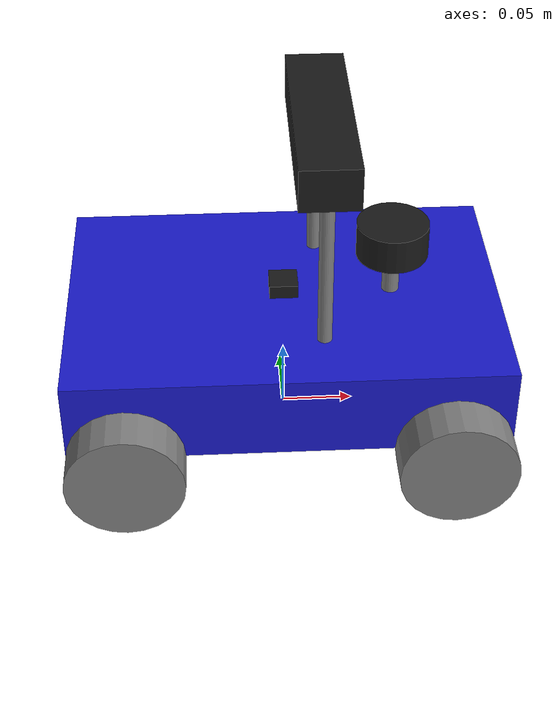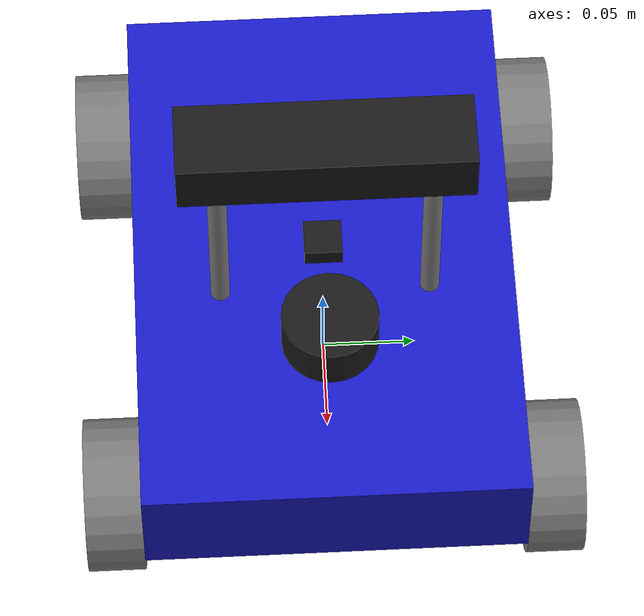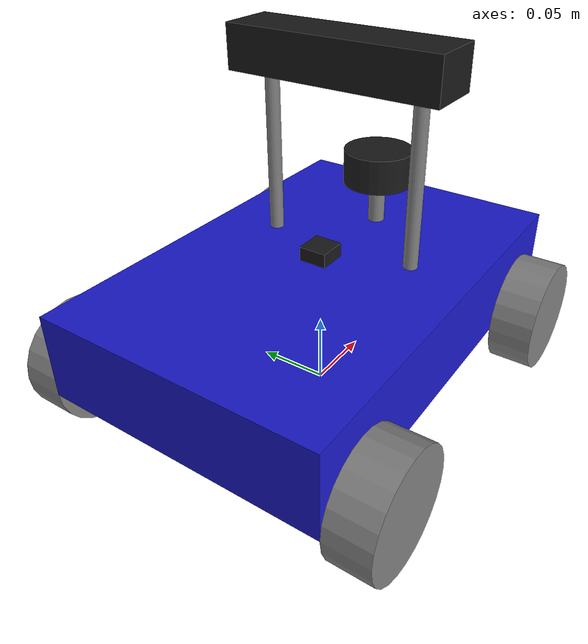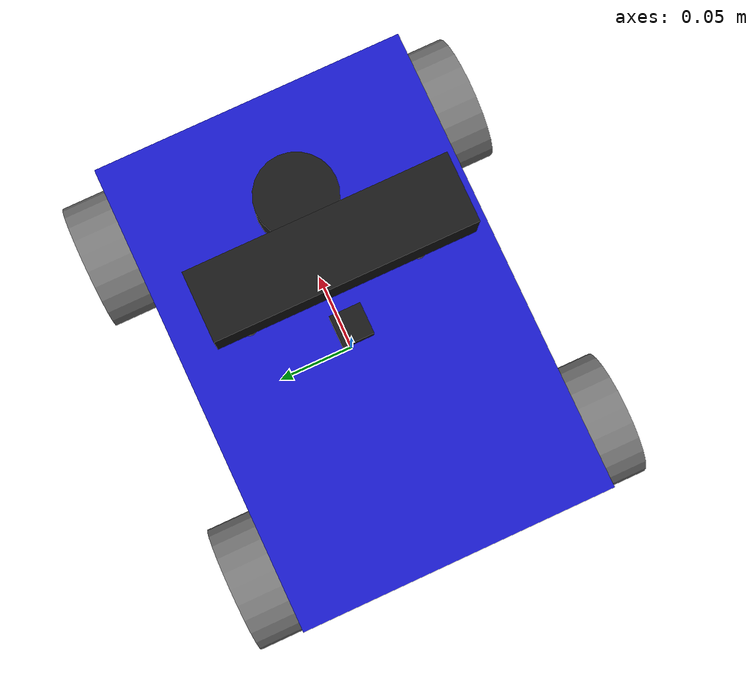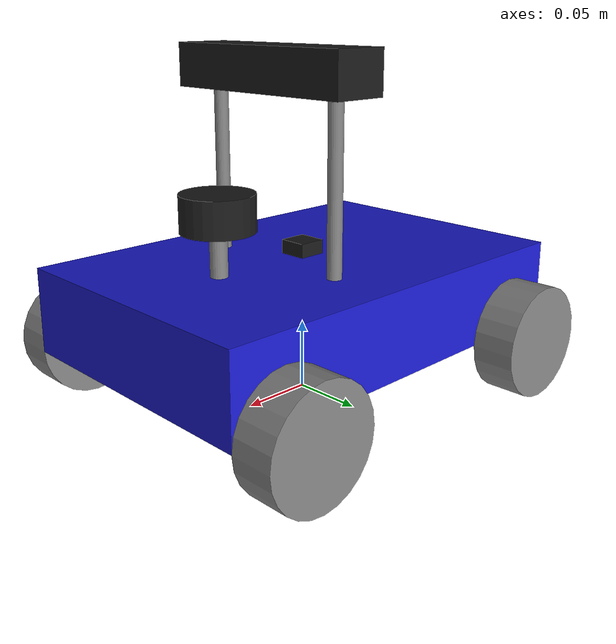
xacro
<?xml version="1.0"?>
<robot name="roscar" xmlns:xacro="http://www.ros.org/wiki/xacro">

    <!-- 仿真专用入口：复用 description 的机器人模型，再叠加 Gazebo 控制插件。 -->
    <xacro:include filename="$(find roscar_description)/urdf/roscar.urdf.xacro"/>

    <!-- Gazebo ros2_control 接入，仅在仿真模型中启用。 -->
    <xacro:include filename="$(find roscar_description)/urdf/gazebo_ros2_control.xacro"/>

    <!-- Gazebo 传感器仿真插件，仅在仿真模型中启用。 -->
    <xacro:include filename="$(find roscar_simulation)/plugins/gazebo_sensor_plugins.xacro"/>

</robot>

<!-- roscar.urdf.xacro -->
<robot name="roscar" xmlns:xacro="http://www.ros.org/wiki/xacro">

    <!-- 主入口文件：把机器人底盘、传感器和仿真相关描述组合成完整的 roscar 模型。 -->

    <!-- 通用质量和惯性宏。 -->
    <xacro:include filename="$(find roscar_description)/urdf/common_inertial.xacro"/>

    <!-- 底盘、base_footprint、base_link 和四个车轮。 -->
    <xacro:include filename="$(find roscar_description)/urdf/roscar_base.xacro"/>

    <!-- IMU、相机、相机光学坐标系和激光雷达。 -->
    <xacro:include filename="$(find roscar_description)/urdf/roscar_sensors.xacro"/>

    <!-- Gazebo 专用参数；RViz 显示时会忽略这些扩展标签。 -->
    <xacro:include filename="$(find roscar_description)/urdf/roscar_gazebo.xacro"/>

</robot>

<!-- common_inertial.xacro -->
<robot xmlns:xacro="http://www.ros.org/wiki/xacro">

    <!-- 通用惯性宏：质量单位 kg，尺寸单位 m，惯性单位 kg*m^2。 -->

    <!-- 长方体惯性，x/y/z 分别为盒体长宽高。 -->
    <xacro:macro name="box_inertial" params="mass x y z origin_xyz:='0 0 0' origin_rpy:='0 0 0'">
        <inertial>
            <origin xyz="${origin_xyz}" rpy="${origin_rpy}"/>
            <mass value="${mass}"/>
            <inertia
                ixx="${mass * (y*y + z*z) / 12.0}"
                ixy="0.0"
                ixz="0.0"
                iyy="${mass * (x*x + z*z) / 12.0}"
                iyz="0.0"
                izz="${mass * (x*x + y*y) / 12.0}"/>
        </inertial>
    </xacro:macro>

    <!-- 竖直圆柱惯性，圆柱轴沿 link 的 Z 轴。 -->
    <xacro:macro name="cylinder_z_inertial" params="mass radius length origin_xyz:='0 0 0' origin_rpy:='0 0 0'">
        <inertial>
            <origin xyz="${origin_xyz}" rpy="${origin_rpy}"/>
            <mass value="${mass}"/>
            <inertia
                ixx="${mass * (3.0*radius*radius + length*length) / 12.0}"
                ixy="0.0"
                ixz="0.0"
                iyy="${mass * (3.0*radius*radius + length*length) / 12.0}"
                iyz="0.0"
                izz="${mass * radius*radius / 2.0}"/>
        </inertial>
    </xacro:macro>

    <!-- 横向车轮惯性，圆柱轴沿 link 的 Y 轴。 -->
    <xacro:macro name="wheel_y_inertial" params="mass radius length origin_xyz:='0 0 0' origin_rpy:='0 0 0'">
        <inertial>
            <origin xyz="${origin_xyz}" rpy="${origin_rpy}"/>
            <mass value="${mass}"/>
            <inertia
                ixx="${mass * (3.0*radius*radius + length*length) / 12.0}"
                ixy="0.0"
                ixz="0.0"
                iyy="${mass * radius*radius / 2.0}"
                iyz="0.0"
                izz="${mass * (3.0*radius*radius + length*length) / 12.0}"/>
        </inertial>
    </xacro:macro>

</robot>

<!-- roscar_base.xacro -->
<robot xmlns:xacro="http://www.ros.org/wiki/xacro">

    <!-- 车体尺寸参数，单位为米；通过属性集中管理，便于后续调整整车比例。 -->
    <xacro:property name="base_length" value="0.3"/>
    <xacro:property name="base_width" value="0.2"/>
    <xacro:property name="base_height" value="0.06"/>
    <xacro:property name="wheel_radius" value="0.04"/>
    <xacro:property name="wheel_length" value="0.03"/>
    <xacro:property name="base_mass" value="2.0"/>
    <xacro:property name="wheel_mass" value="0.18"/>

    <!-- base_footprint 是投影在地面上的机器人参考坐标系，常用于导航和 TF 树根部。 -->
    <link name="base_footprint"/>

    <!-- base_link 位于车体中心附近，向上抬高一个轮半径，使车轮与地面相切。 -->
    <joint name="base_joint" type="fixed">
        <parent link="base_footprint"/>
        <child link="base_link"/>
        <origin xyz="0 0 ${wheel_radius}" rpy="0 0 0"/>
    </joint>

    <!-- 主车身：蓝色长方体，同时提供 visual 和 collision 方便显示与碰撞检测。 -->
    <link name="base_link">
        <xacro:box_inertial
            mass="${base_mass}"
            x="${base_length}"
            y="${base_width}"
            z="${base_height}"
            origin_xyz="0 0 ${base_height/2}"/>
        <visual>
            <origin xyz="0 0 ${base_height/2}" rpy="0 0 0"/>
            <geometry>
                <box size="${base_length} ${base_width} ${base_height}"/>
            </geometry>
            <material name="blue">
                <color rgba="0.1 0.1 0.8 1.0"/>
            </material>
        </visual>
        <collision>
            <origin xyz="0 0 ${base_height/2}" rpy="0 0 0"/>
            <geometry>
                <box size="${base_length} ${base_width} ${base_height}"/>
            </geometry>
        </collision>
    </link>

    <!-- 车轮宏：通过前后左右的符号参数复用同一套 link/joint 定义。 -->
    <xacro:macro name="roscar_wheel" params="prefix x_reflect y_reflect">
        <!-- 单个车轮：圆柱绕 Y 轴布置，灰色材质仅用于 RViz/Gazebo 可视化。 -->
        <link name="${prefix}_wheel">
            <xacro:wheel_y_inertial
                mass="${wheel_mass}"
                radius="${wheel_radius}"
                length="${wheel_length}"/>
            <visual>
                <origin xyz="0 0 0" rpy="${pi/2} 0 0"/>
                <geometry>
                    <cylinder radius="${wheel_radius}" length="${wheel_length}"/>
                </geometry>
                <material name="gray">
                    <color rgba="0.5 0.5 0.5 1.0"/>
                </material>
            </visual>
            <collision>
                <origin xyz="0 0 0" rpy="${pi/2} 0 0"/>
                <geometry>
                    <cylinder radius="${wheel_radius}" length="${wheel_length}"/>
                </geometry>
            </collision>
        </link>

        <!-- 连续关节表示轮子可无限旋转；正速度应驱动车体沿 base_link +X 前进。 -->
        <joint name="${prefix}_wheel_joint" type="continuous">
            <parent link="base_link"/>
            <child link="${prefix}_wheel"/>
            <origin xyz="${x_reflect * (base_length/2 - wheel_radius)} ${y_reflect * (base_width/2 + wheel_length/2)} 0" rpy="0 0 0"/>
            <axis xyz="0 1 0"/>
        </joint>
    </xacro:macro>

    <!-- 实例化四个车轮：x_reflect 控制前后位置，y_reflect 控制左右位置。 -->
    <xacro:roscar_wheel prefix="rear_left" x_reflect="-1" y_reflect="1" />
    <xacro:roscar_wheel prefix="rear_right" x_reflect="-1" y_reflect="-1" />
    <xacro:roscar_wheel prefix="front_left" x_reflect="1" y_reflect="1" />
    <xacro:roscar_wheel prefix="front_right" x_reflect="1" y_reflect="-1" />

</robot>

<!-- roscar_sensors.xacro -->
<robot xmlns:xacro="http://www.ros.org/wiki/xacro">

    <!-- 传感器尺寸和安装位置，单位为米；与底盘尺寸配合，保持整车比例协调。 -->
    <xacro:property name="base_height" value="0.06"/>
    <xacro:property name="laser_mount_x" value="0.075"/>
    <xacro:property name="laser_support_height" value="0.03"/>
    <xacro:property name="laser_support_radius" value="0.006"/>
    <xacro:property name="laser_radius" value="0.025"/>
    <xacro:property name="laser_height" value="0.025"/>
    <xacro:property name="camera_mount_x" value="${laser_mount_x - 0.05}"/>
    <xacro:property name="camera_mount_height" value="0.13"/>
    <xacro:property name="camera_length" value="0.15"/>
    <xacro:property name="camera_width" value="0.04"/>
    <xacro:property name="camera_height" value="0.03"/>
    <xacro:property name="camera_support_radius" value="0.005"/>
    <xacro:property name="camera_support_height" value="${camera_mount_height - camera_height/2}"/>
    <xacro:property name="camera_support_y" value="${camera_length/2 - 0.02}"/>
    <xacro:property name="imu_mass" value="0.03"/>
    <xacro:property name="camera_mass" value="0.25"/>
    <xacro:property name="camera_support_mass" value="0.03"/>
    <xacro:property name="laser_support_mass" value="0.02"/>
    <xacro:property name="laser_mass" value="0.15"/>

    <!-- IMU 外形：放在车体上方的小黑色盒子，对应 imu_link 坐标系。 -->
    <link name="imu_link">
        <xacro:box_inertial mass="${imu_mass}" x="0.02" y="0.02" z="0.01"/>
        <visual>
            <origin xyz="0 0 0" rpy="0 0 0"/>
            <geometry>
                <box size="0.02 0.02 0.01"/>
            </geometry>
            <material name="black">
                <color rgba="0.1 0.1 0.1 1.0"/>
            </material>
        </visual>
    </link>

    <!-- IMU 固定在 base_link 上方，略高于车体上表面。 -->
    <joint name="imu_joint" type="fixed">
        <parent link="base_link"/>
        <child link="imu_link"/>
        <origin xyz="0 0 ${base_height + 0.006}" rpy="0 0 0"/>
    </joint>

    <!-- 前置 AstraPro 深度相机：放在雷达后方 5cm，横向长 15cm、前后宽 4cm。 -->
    <link name="AstraPro_camera_link">
        <xacro:box_inertial
            mass="${camera_mass}"
            x="${camera_width}"
            y="${camera_length}"
            z="${camera_height}"/>
        <visual>
            <origin xyz="0 0 0" rpy="0 0 0"/>
            <geometry>
                <box size="${camera_width} ${camera_length} ${camera_height}"/>
            </geometry>
            <material name="black"/>
        </visual>
        <collision>
            <origin xyz="0 0 0" rpy="0 0 0"/>
            <geometry>
                <box size="${camera_width} ${camera_length} ${camera_height}"/>
            </geometry>
        </collision>
    </link>

    <!-- 相机固定在车面上方 13cm，位于雷达后方 5cm 处。 -->
    <joint name="AstraPro_camera_joint" type="fixed">
        <parent link="base_link"/>
        <child link="AstraPro_camera_link"/>
        <origin xyz="${camera_mount_x} 0 ${base_height + camera_mount_height}" rpy="0 0 0"/>
    </joint>

    <!-- ROS 相机光学坐标系：满足 REP-103，Z 轴朝前、X 轴向右、Y 轴向下。 -->
    <link name="AstraPro_camera_optical_frame"/>
    <joint name="AstraPro_camera_optical_joint" type="fixed">
        <parent link="AstraPro_camera_link"/>
        <child link="AstraPro_camera_optical_frame"/>
        <origin xyz="0 0 0" rpy="${-pi/2} 0 ${-pi/2}"/>
    </joint>

    <!-- AstraPro 左侧支撑杆。 -->
    <link name="AstraPro_left_support_link">
        <xacro:cylinder_z_inertial
            mass="${camera_support_mass}"
            radius="${camera_support_radius}"
            length="${camera_support_height}"/>
        <visual>
            <origin xyz="0 0 0" rpy="0 0 0"/>
            <geometry>
                <cylinder radius="${camera_support_radius}" length="${camera_support_height}"/>
            </geometry>
            <material name="gray"/>
        </visual>
        <collision>
            <origin xyz="0 0 0" rpy="0 0 0"/>
            <geometry>
                <cylinder radius="${camera_support_radius}" length="${camera_support_height}"/>
            </geometry>
        </collision>
    </link>

    <!-- AstraPro 右侧支撑杆。 -->
    <link name="AstraPro_right_support_link">
        <xacro:cylinder_z_inertial
            mass="${camera_support_mass}"
            radius="${camera_support_radius}"
            length="${camera_support_height}"/>
        <visual>
            <origin xyz="0 0 0" rpy="0 0 0"/>
            <geometry>
                <cylinder radius="${camera_support_radius}" length="${camera_support_height}"/>
            </geometry>
            <material name="gray"/>
        </visual>
        <collision>
            <origin xyz="0 0 0" rpy="0 0 0"/>
            <geometry>
                <cylinder radius="${camera_support_radius}" length="${camera_support_height}"/>
            </geometry>
        </collision>
    </link>

    <!-- 两根支撑杆固定到车体上表面，并顶到相机下方左右两侧。 -->
    <joint name="AstraPro_left_support_joint" type="fixed">
        <parent link="base_link"/>
        <child link="AstraPro_left_support_link"/>
        <origin xyz="${camera_mount_x} ${camera_support_y} ${base_height + camera_support_height/2}" rpy="0 0 0"/>
    </joint>
    <joint name="AstraPro_right_support_joint" type="fixed">
        <parent link="base_link"/>
        <child link="AstraPro_right_support_link"/>
        <origin xyz="${camera_mount_x} ${-camera_support_y} ${base_height + camera_support_height/2}" rpy="0 0 0"/>
    </joint>

    <!-- 雷达支撑杆：安装在车体靠前位置，高度为 0.03m。 -->
    <link name="laser_support_link">
        <xacro:cylinder_z_inertial
            mass="${laser_support_mass}"
            radius="${laser_support_radius}"
            length="${laser_support_height}"/>
        <visual>
            <origin xyz="0 0 0" rpy="0 0 0"/>
            <geometry>
                <cylinder radius="${laser_support_radius}" length="${laser_support_height}"/>
            </geometry>
            <material name="gray"/>
        </visual>
    </link>

    <!-- 支撑杆固定到车体前部上表面。 -->
    <joint name="laser_support_joint" type="fixed">
        <parent link="base_link"/>
        <child link="laser_support_link"/>
        <origin xyz="${laser_mount_x} 0 ${base_height + laser_support_height/2}" rpy="0 0 0"/>
    </joint>

    <!-- 激光雷达外形：圆柱形，高 0.025m，半径 0.025m。 -->
    <link name="laser_link">
        <xacro:cylinder_z_inertial
            mass="${laser_mass}"
            radius="${laser_radius}"
            length="${laser_height}"/>
        <visual>
            <origin xyz="0 0 0" rpy="0 0 0"/>
            <geometry>
                <cylinder radius="${laser_radius}" length="${laser_height}"/>
            </geometry>
            <material name="black"/>
        </visual>
    </link>

    <!-- 雷达固定关节：直接安装到 base_link，支撑杆仅作为外观件，避免 Gazebo 固定关节链影响传感器。 -->
    <joint name="laser_joint" type="fixed">
        <parent link="base_link"/>
        <child link="laser_link"/>
        <origin xyz="${laser_mount_x} 0 ${base_height + laser_support_height + laser_height/2}" rpy="0 0 0"/>
    </joint>

</robot>
